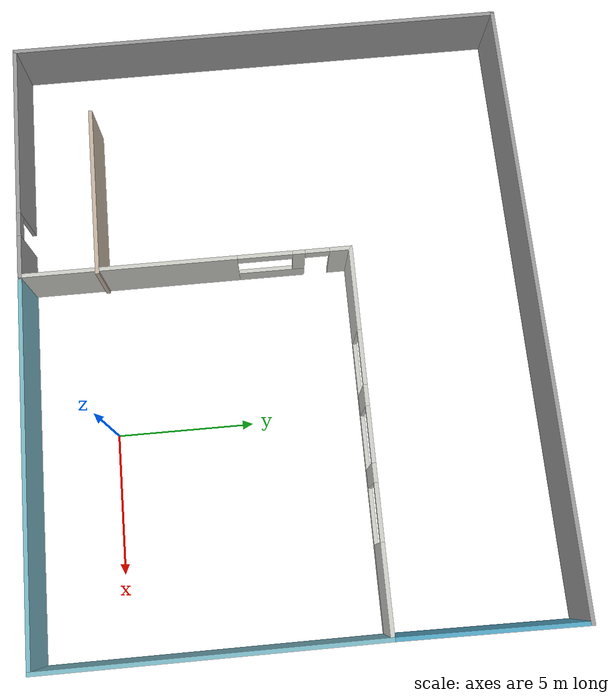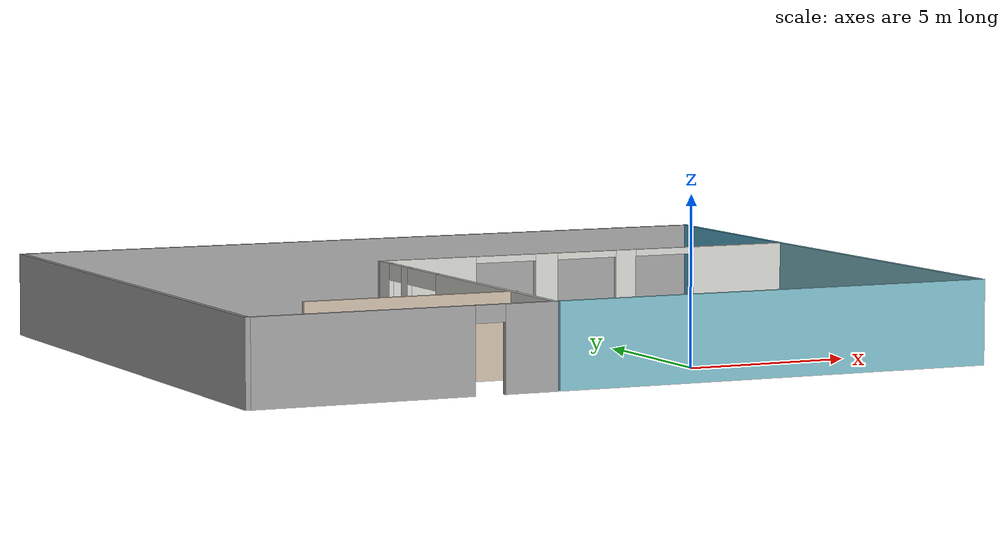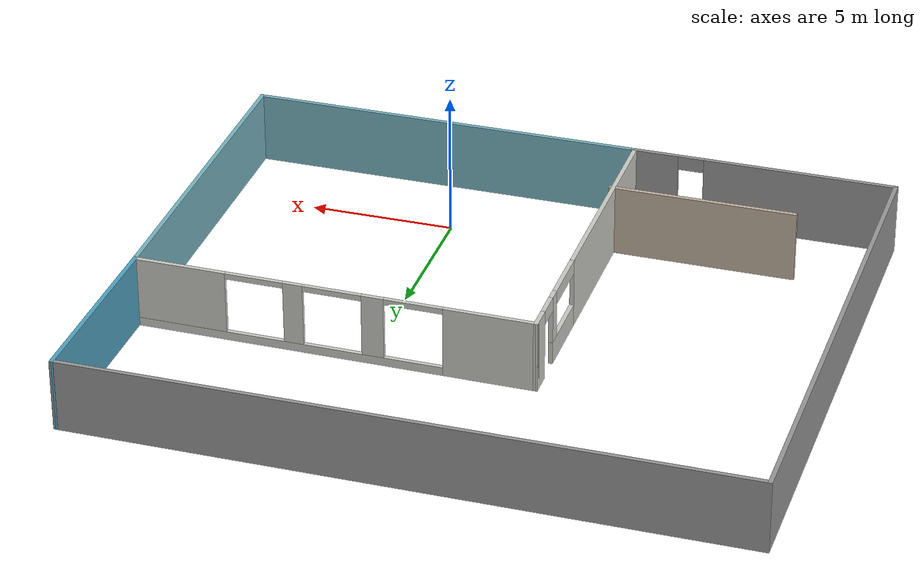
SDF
<?xml version='1.0'?>
<sdf version='1.6'>
  <model name='mybuilding'>
    <pose frame=''>-3.42455 6.37045 0 0 -0 0</pose>
    <link name='Wall_29'>
      <pose frame=''>-2.31245 -3.25345 0 0 -0 1.5708</pose>
      <visual name='Wall_29_Visual_0'>
        <pose frame=''>-2.10464 0 1.25 0 -0 0</pose>
        <geometry>
          <box>
            <size>7.91873 0.15 2.5</size>
          </box>
        </geometry>
        <material>
          <script>
            <uri>file://media/materials/scripts/gazebo.material</uri>
            <name>Gazebo/CeilingTiled</name>
          </script>
          <ambient>0.47451 0.713726 0.764706 1</ambient>
        </material>
        <meta>
          <layer>0</layer>
        </meta>
      </visual>
      <collision name='Wall_29_Collision_0'>
        <geometry>
          <box>
            <size>7.91873 0.15 2.5</size>
          </box>
        </geometry>
        <pose frame=''>-2.10464 0 1.25 0 -0 0</pose>
      </collision>
      <visual name='Wall_29_Visual_1'>
        <pose frame=''>5.6459 0 1.25 0 -0 0</pose>
        <geometry>
          <box>
            <size>0.836189 0.15 2.5</size>
          </box>
        </geometry>
        <material>
          <script>
            <uri>file://media/materials/scripts/gazebo.material</uri>
            <name>Gazebo/CeilingTiled</name>
          </script>
          <ambient>0.47451 0.713726 0.764706 1</ambient>
        </material>
        <meta>
          <layer>0</layer>
        </meta>
      </visual>
      <collision name='Wall_29_Collision_1'>
        <geometry>
          <box>
            <size>0.836189 0.15 2.5</size>
          </box>
        </geometry>
        <pose frame=''>5.6459 0 1.25 0 -0 0</pose>
      </collision>
      <visual name='Wall_29_Visual_2'>
        <pose frame=''>3.09127 0 0.4 0 -0 0</pose>
        <geometry>
          <box>
            <size>2.47308 0.15 0.8</size>
          </box>
        </geometry>
        <material>
          <script>
            <uri>file://media/materials/scripts/gazebo.material</uri>
            <name>Gazebo/CeilingTiled</name>
          </script>
          <ambient>0.47451 0.713726 0.764706 1</ambient>
        </material>
        <meta>
          <layer>0</layer>
        </meta>
      </visual>
      <collision name='Wall_29_Collision_2'>
        <geometry>
          <box>
            <size>2.47308 0.15 0.8</size>
          </box>
        </geometry>
        <pose frame=''>3.09127 0 0.4 0 -0 0</pose>
      </collision>
      <visual name='Wall_29_Visual_3'>
        <pose frame=''>4.10266 0 1.65 0 -0 0</pose>
        <geometry>
          <box>
            <size>0.450302 0.15 1.7</size>
          </box>
        </geometry>
        <material>
          <script>
            <uri>file://media/materials/scripts/gazebo.material</uri>
            <name>Gazebo/CeilingTiled</name>
          </script>
          <ambient>0.47451 0.713726 0.764706 1</ambient>
        </material>
        <meta>
          <layer>0</layer>
        </meta>
      </visual>
      <collision name='Wall_29_Collision_3'>
        <geometry>
          <box>
            <size>0.450302 0.15 1.7</size>
          </box>
        </geometry>
        <pose frame=''>4.10266 0 1.65 0 -0 0</pose>
      </collision>
      <visual name='Wall_29_Visual_4'>
        <pose frame=''>4.77781 0 2.25 0 -0 0</pose>
        <geometry>
          <box>
            <size>0.9 0.15 0.5</size>
          </box>
        </geometry>
        <material>
          <script>
            <uri>file://media/materials/scripts/gazebo.material</uri>
            <name>Gazebo/CeilingTiled</name>
          </script>
          <ambient>0.47451 0.713726 0.764706 1</ambient>
        </material>
        <meta>
          <layer>0</layer>
        </meta>
      </visual>
      <collision name='Wall_29_Collision_4'>
        <geometry>
          <box>
            <size>0.9 0.15 0.5</size>
          </box>
        </geometry>
        <pose frame=''>4.77781 0 2.25 0 -0 0</pose>
      </collision>
      <visual name='Wall_29_Visual_5'>
        <pose frame=''>2.86612 0 2.25 0 -0 0</pose>
        <geometry>
          <box>
            <size>2.02278 0.15 0.5</size>
          </box>
        </geometry>
        <material>
          <script>
            <uri>file://media/materials/scripts/gazebo.material</uri>
            <name>Gazebo/CeilingTiled</name>
          </script>
          <ambient>0.47451 0.713726 0.764706 1</ambient>
        </material>
        <meta>
          <layer>0</layer>
        </meta>
      </visual>
      <collision name='Wall_29_Collision_5'>
        <geometry>
          <box>
            <size>2.02278 0.15 0.5</size>
          </box>
        </geometry>
        <pose frame=''>2.86612 0 2.25 0 -0 0</pose>
      </collision>
    </link>
    <link name='Wall_30'>
      <pose frame=''>4.51555 2.69505 0 0 0 -0.005931</pose>
      <visual name='Wall_30_Visual_0'>
        <pose frame=''>-5.3172 0 1.25 0 -0 0</pose>
        <geometry>
          <box>
            <size>3.1716 0.15 2.5</size>
          </box>
        </geometry>
        <material>
          <script>
            <uri>file://media/materials/scripts/gazebo.material</uri>
            <name>Gazebo/CeilingTiled</name>
          </script>
          <ambient>1 1 1 1</ambient>
        </material>
        <meta>
          <layer>0</layer>
        </meta>
      </visual>
      <collision name='Wall_30_Collision_0'>
        <geometry>
          <box>
            <size>3.1716 0.15 2.5</size>
          </box>
        </geometry>
        <pose frame=''>-5.3172 0 1.25 0 -0 0</pose>
      </collision>
      <visual name='Wall_30_Visual_1'>
        <pose frame=''>1.5858 0 0.15 0 -0 0</pose>
        <geometry>
          <box>
            <size>10.6344 0.15 0.3</size>
          </box>
        </geometry>
        <material>
          <script>
            <uri>file://media/materials/scripts/gazebo.material</uri>
            <name>Gazebo/CeilingTiled</name>
          </script>
          <ambient>1 1 1 1</ambient>
        </material>
        <meta>
          <layer>0</layer>
        </meta>
      </visual>
      <collision name='Wall_30_Collision_1'>
        <geometry>
          <box>
            <size>10.6344 0.15 0.3</size>
          </box>
        </geometry>
        <pose frame=''>1.5858 0 0.15 0 -0 0</pose>
      </collision>
      <visual name='Wall_30_Visual_2'>
        <pose frame=''>-1.35588 0 1.4 0 -0 0</pose>
        <geometry>
          <box>
            <size>0.751028 0.15 2.2</size>
          </box>
        </geometry>
        <material>
          <script>
            <uri>file://media/materials/scripts/gazebo.material</uri>
            <name>Gazebo/CeilingTiled</name>
          </script>
          <ambient>1 1 1 1</ambient>
        </material>
        <meta>
          <layer>0</layer>
        </meta>
      </visual>
      <collision name='Wall_30_Collision_2'>
        <geometry>
          <box>
            <size>0.751028 0.15 2.2</size>
          </box>
        </geometry>
        <pose frame=''>-1.35588 0 1.4 0 -0 0</pose>
      </collision>
      <visual name='Wall_30_Visual_3'>
        <pose frame=''>1.35469 0 1.4 0 -0 0</pose>
        <geometry>
          <box>
            <size>0.670115 0.15 2.2</size>
          </box>
        </geometry>
        <material>
          <script>
            <uri>file://media/materials/scripts/gazebo.material</uri>
            <name>Gazebo/CeilingTiled</name>
          </script>
          <ambient>1 1 1 1</ambient>
        </material>
        <meta>
          <layer>0</layer>
        </meta>
      </visual>
      <collision name='Wall_30_Collision_3'>
        <geometry>
          <box>
            <size>0.670115 0.15 2.2</size>
          </box>
        </geometry>
        <pose frame=''>1.35469 0 1.4 0 -0 0</pose>
      </collision>
      <visual name='Wall_30_Visual_4'>
        <pose frame=''>5.29637 0 1.4 0 -0 0</pose>
        <geometry>
          <box>
            <size>3.21326 0.15 2.2</size>
          </box>
        </geometry>
        <material>
          <script>
            <uri>file://media/materials/scripts/gazebo.material</uri>
            <name>Gazebo/CeilingTiled</name>
          </script>
          <ambient>1 1 1 1</ambient>
        </material>
        <meta>
          <layer>0</layer>
        </meta>
      </visual>
      <collision name='Wall_30_Collision_4'>
        <geometry>
          <box>
            <size>3.21326 0.15 2.2</size>
          </box>
        </geometry>
        <pose frame=''>5.29637 0 1.4 0 -0 0</pose>
      </collision>
      <visual name='Wall_30_Visual_5'>
        <pose frame=''>-2.7314 0 2.4 0 -0 0</pose>
        <geometry>
          <box>
            <size>2 0.15 0.2</size>
          </box>
        </geometry>
        <material>
          <script>
            <uri>file://media/materials/scripts/gazebo.material</uri>
            <name>Gazebo/CeilingTiled</name>
          </script>
          <ambient>1 1 1 1</ambient>
        </material>
        <meta>
          <layer>0</layer>
        </meta>
      </visual>
      <collision name='Wall_30_Collision_5'>
        <geometry>
          <box>
            <size>2 0.15 0.2</size>
          </box>
        </geometry>
        <pose frame=''>-2.7314 0 2.4 0 -0 0</pose>
      </collision>
      <visual name='Wall_30_Visual_6'>
        <pose frame=''>0.01963 0 2.4 0 -0 0</pose>
        <geometry>
          <box>
            <size>2 0.15 0.2</size>
          </box>
        </geometry>
        <material>
          <script>
            <uri>file://media/materials/scripts/gazebo.material</uri>
            <name>Gazebo/CeilingTiled</name>
          </script>
          <ambient>1 1 1 1</ambient>
        </material>
        <meta>
          <layer>0</layer>
        </meta>
      </visual>
      <collision name='Wall_30_Collision_6'>
        <geometry>
          <box>
            <size>2 0.15 0.2</size>
          </box>
        </geometry>
        <pose frame=''>0.01963 0 2.4 0 -0 0</pose>
      </collision>
      <visual name='Wall_30_Visual_7'>
        <pose frame=''>2.68974 0 2.4 0 -0 0</pose>
        <geometry>
          <box>
            <size>2 0.15 0.2</size>
          </box>
        </geometry>
        <material>
          <script>
            <uri>file://media/materials/scripts/gazebo.material</uri>
            <name>Gazebo/CeilingTiled</name>
          </script>
          <ambient>1 1 1 1</ambient>
        </material>
        <meta>
          <layer>0</layer>
        </meta>
      </visual>
      <collision name='Wall_30_Collision_7'>
        <geometry>
          <box>
            <size>2 0.15 0.2</size>
          </box>
        </geometry>
        <pose frame=''>2.68974 0 2.4 0 -0 0</pose>
      </collision>
    </link>
    <link name='Wall_44'>
      <collision name='Wall_44_Collision'>
        <geometry>
          <box>
            <size>12.094 0.15 2.5</size>
          </box>
        </geometry>
        <pose frame=''>0 0 1.25 0 -0 0</pose>
      </collision>
      <visual name='Wall_44_Visual'>
        <pose frame=''>0 0 1.25 0 -0 0</pose>
        <geometry>
          <box>
            <size>12.094 0.15 2.5</size>
          </box>
        </geometry>
        <material>
          <script>
            <uri>file://media/materials/scripts/gazebo.material</uri>
            <name>Gazebo/Grey</name>
          </script>
          <ambient>0.47451 0.713726 0.764706 1</ambient>
        </material>
        <meta>
          <layer>0</layer>
        </meta>
      </visual>
      <pose frame=''>11.3435 -3.31745 0 0 0 -1.5708</pose>
    </link>
    <link name='Wall_46'>
      <collision name='Wall_46_Collision'>
        <geometry>
          <box>
            <size>13.6168 0.15 2.5</size>
          </box>
        </geometry>
        <pose frame=''>0 0 1.25 0 -0 0</pose>
      </collision>
      <visual name='Wall_46_Visual'>
        <pose frame=''>0 0 1.25 0 -0 0</pose>
        <geometry>
          <box>
            <size>13.6168 0.15 2.5</size>
          </box>
        </geometry>
        <material>
          <script>
            <uri>file://media/materials/scripts/gazebo.material</uri>
            <name>Gazebo/Grey</name>
          </script>
          <ambient>0.47451 0.713726 0.764706 1</ambient>
        </material>
        <meta>
          <layer>0</layer>
        </meta>
      </visual>
      <pose frame=''>4.61005 -9.28945 0 0 -0 3.14159</pose>
    </link>
    <link name='Wall_51'>
      <collision name='Wall_51_Collision'>
        <geometry>
          <box>
            <size>6.78449 0.15 2.5</size>
          </box>
        </geometry>
        <pose frame=''>0 0 1.25 0 -0 0</pose>
      </collision>
      <visual name='Wall_51_Visual'>
        <pose frame=''>0 0 1.25 0 -0 0</pose>
        <geometry>
          <box>
            <size>6.78449 0.15 2.5</size>
          </box>
        </geometry>
        <material>
          <script>
            <uri>file://media/materials/scripts/gazebo.material</uri>
            <name>Gazebo/Grey</name>
          </script>
          <ambient>0.321569 0.647059 0.764706 1</ambient>
        </material>
        <meta>
          <layer>0</layer>
        </meta>
      </visual>
      <pose frame=''>11.384 5.97155 0 0 -0 1.55859</pose>
    </link>
    <link name='Wall_52'>
      <collision name='Wall_52_Collision'>
        <geometry>
          <box>
            <size>23 0.15 2.5</size>
          </box>
        </geometry>
        <pose frame=''>0 0 1.25 0 -0 0</pose>
      </collision>
      <visual name='Wall_52_Visual'>
        <pose frame=''>0 0 1.25 0 -0 0</pose>
        <geometry>
          <box>
            <size>23 0.15 2.5</size>
          </box>
        </geometry>
        <material>
          <script>
            <uri>file://media/materials/scripts/gazebo.material</uri>
            <name>Gazebo/Grey</name>
          </script>
          <ambient>1 1 1 1</ambient>
        </material>
        <meta>
          <layer>0</layer>
        </meta>
      </visual>
      <pose frame=''>-0.000454 9.28855 0 0 -0 3.14159</pose>
    </link>
    <link name='Wall_53'>
      <collision name='Wall_53_Collision'>
        <geometry>
          <box>
            <size>18.728 0.15 2.5</size>
          </box>
        </geometry>
        <pose frame=''>0 0 1.25 0 -0 0</pose>
      </collision>
      <visual name='Wall_53_Visual'>
        <pose frame=''>0 0 1.25 0 -0 0</pose>
        <geometry>
          <box>
            <size>18.728 0.15 2.5</size>
          </box>
        </geometry>
        <material>
          <script>
            <uri>file://media/materials/scripts/gazebo.material</uri>
            <name>Gazebo/Grey</name>
          </script>
          <ambient>1 1 1 1</ambient>
        </material>
        <meta>
          <layer>0</layer>
        </meta>
      </visual>
      <pose frame=''>-11.4255 -0.000454 0 0 0 -1.5708</pose>
    </link>
    <link name='Wall_54'>
      <pose frame=''>-6.87545 -9.28945 0 0 -0 0</pose>
      <visual name='Wall_54_Visual_0'>
        <pose frame=''>-1.25586 0 1.25 0 -0 0</pose>
        <geometry>
          <box>
            <size>6.73829 0.15 2.5</size>
          </box>
        </geometry>
        <material>
          <script>
            <uri>file://media/materials/scripts/gazebo.material</uri>
            <name>Gazebo/Grey</name>
          </script>
          <ambient>1 1 1 1</ambient>
        </material>
        <meta>
          <layer>0</layer>
        </meta>
      </visual>
      <collision name='Wall_54_Collision_0'>
        <geometry>
          <box>
            <size>6.73829 0.15 2.5</size>
          </box>
        </geometry>
        <pose frame=''>-1.25586 0 1.25 0 -0 0</pose>
      </collision>
      <visual name='Wall_54_Visual_1'>
        <pose frame=''>3.81914 0 1.25 0 -0 0</pose>
        <geometry>
          <box>
            <size>1.61171 0.15 2.5</size>
          </box>
        </geometry>
        <material>
          <script>
            <uri>file://media/materials/scripts/gazebo.material</uri>
            <name>Gazebo/Grey</name>
          </script>
          <ambient>1 1 1 1</ambient>
        </material>
        <meta>
          <layer>0</layer>
        </meta>
      </visual>
      <collision name='Wall_54_Collision_1'>
        <geometry>
          <box>
            <size>1.61171 0.15 2.5</size>
          </box>
        </geometry>
        <pose frame=''>3.81914 0 1.25 0 -0 0</pose>
      </collision>
      <visual name='Wall_54_Visual_2'>
        <pose frame=''>2.56329 0 2.25 0 -0 0</pose>
        <geometry>
          <box>
            <size>0.9 0.15 0.5</size>
          </box>
        </geometry>
        <material>
          <script>
            <uri>file://media/materials/scripts/gazebo.material</uri>
            <name>Gazebo/Grey</name>
          </script>
          <ambient>1 1 1 1</ambient>
        </material>
        <meta>
          <layer>0</layer>
        </meta>
      </visual>
      <collision name='Wall_54_Collision_2'>
        <geometry>
          <box>
            <size>0.9 0.15 0.5</size>
          </box>
        </geometry>
        <pose frame=''>2.56329 0 2.25 0 -0 0</pose>
      </collision>
    </link>
    <link name='Wall_56'>
      <collision name='Wall_56_Collision'>
        <geometry>
          <box>
            <size>6.5 0.15 2.5</size>
          </box>
        </geometry>
        <pose frame=''>0 0 1.25 0 -0 0</pose>
      </collision>
      <visual name='Wall_56_Visual'>
        <pose frame=''>0 0 1.25 0 -0 0</pose>
        <geometry>
          <box>
            <size>6.5 0.15 2.5</size>
          </box>
        </geometry>
        <material>
          <script>
            <uri>file://media/materials/scripts/gazebo.material</uri>
            <name>Gazebo/Grey</name>
          </script>
          <ambient>0.764706 0.701961 0.631373 1</ambient>
        </material>
        <meta>
          <layer>0</layer>
        </meta>
      </visual>
      <pose frame=''>-5.40105 -6.4923 0 0 -0 3.14159</pose>
    </link>
    <static>1</static>
  </model>
</sdf>
